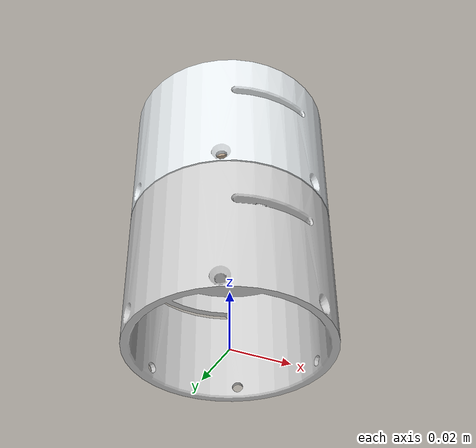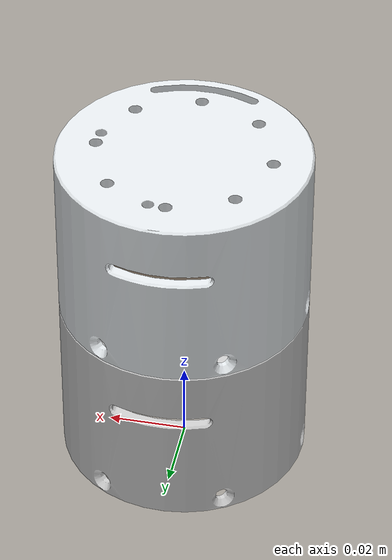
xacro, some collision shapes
<?xml version="1.0"?>
<robot xmlns:xacro="http://wiki.ros.org/xacro"
       name="sensor" >

  <xacro:arg name="prefix" default="ft_sensor0"/>

  <xacro:include filename="$(find rokubi_kinova_adapter)/urdf/BFT_ROKS_KINOVA.urdf.xacro" />

  <xacro:property name="prefix" value="$(arg prefix)" />

  <xacro:BFT_ROKS_KINOVA prefix="${prefix}" />

  <link name="world" />

  <joint name="world_joint" type="fixed">
    <parent link="world" />
    <child link = "$(arg prefix)_robot_side" />
    <origin xyz="0.0 0.0 0.0" rpy="0.0 0.0 0.0" />
  </joint>

</robot>

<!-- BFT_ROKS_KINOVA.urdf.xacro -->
<root xmlns:xi="http://www.w3.org/2001/XInclude"
    xmlns:gazebo="http://playerstage.sourceforge.net/gazebo/xmlschema/#gz"
    xmlns:model="http://playerstage.sourceforge.net/gazebo/xmlschema/#model"
    xmlns:sensor="http://playerstage.sourceforge.net/gazebo/xmlschema/#sensor"
    xmlns:body="http://playerstage.sourceforge.net/gazebo/xmlschema/#body"
    xmlns:geom="http://playerstage.sourceforge.net/gazebo/xmlschema/#geom"
    xmlns:joint="http://playerstage.sourceforge.net/gazebo/xmlschema/#joint"
    xmlns:controller="http://playerstage.sourceforge.net/gazebo/xmlschema/#controller"
    xmlns:interface="http://playerstage.sourceforge.net/gazebo/xmlschema/#interface"
    xmlns:rendering="http://playerstage.sourceforge.net/gazebo/xmlschema/#rendering"
    xmlns:renderable="http://playerstage.sourceforge.net/gazebo/xmlschema/#renderable"
    xmlns:physics="http://playerstage.sourceforge.net/gazebo/xmlschema/#physics"
    xmlns:xacro="http://www.ros.org/wiki/xacro">

  <xacro:include filename="$(find rokubi_kinova_adapter)/urdf/BFT_ROKS_SER_M8.urdf.xacro" />

  <xacro:macro name="BFT_ROKS_KINOVA" params="prefix">
    <link name="${prefix}_robot_side">
      <inertial>
        <origin
          xyz="-1.493E-05 0.00031132 0.030733"
          rpy="0 0 0" />
        <mass
          value="0.11363" />
        <inertia
          ixx="6.0031E-05"
          ixy="-4.9397E-10"
          ixz="2.1498E-08"
          iyy="6.1766E-05"
          iyz="-3.7872E-07"
          izz="7.9726E-05" />
      </inertial>
      <visual>
        <origin
          xyz="0 0 0"
          rpy="0 0 0" />
        <geometry>
          <mesh
            filename="package://rokubi_kinova_adapter/meshes/adapter/mounting.STL" />
        </geometry>
        <material
          name="">
          <color
            rgba="0.8 0.8 0.8 1" />
        </material>
      </visual>
      <collision>
        <origin
          xyz="0 0 0"
          rpy="0 0 0" />
        <geometry>
          <mesh
            filename="package://rokubi_kinova_adapter/meshes/adapter/mounting.STL" />
        </geometry>
      </collision>
    </link>
    <link name="${prefix}_adapter"/>
    <joint
      name="${prefix}_adapter_joint"
      type="fixed">
      <origin
        xyz="0 0 0.045"
        rpy="0 0 0" />
      <parent
        link="${prefix}_robot_side" />
      <child
        link="${prefix}_adapter" />
      <axis
        xyz="0 0 0" />
    </joint>

    <xacro:BFT_ROKS_SER_M8 prefix="${prefix}" />

    <joint name="${prefix}_sensor_joint" type="fixed">
      <parent link="${prefix}_adapter" />
      <child link = "${prefix}_mounting" />
      <origin xyz="0.0 0.0 0.0" rpy="0.0 0.0 0.0" />
    </joint>

    <joint name="${prefix}_gripper_adapter_joint" type="fixed">
      <parent link="${prefix}_wrench" />
      <child link = "${prefix}_gripper_adapter" />
      <origin xyz="0.0 0.0 0.0" rpy="0.0 0.0 0.0" />
    </joint>

    <link name="${prefix}_gripper_adapter">
      <inertial>
        <origin
          xyz="4.4172E-05 0.00059454 0.00333"
          rpy="0 0 0" />
        <mass
          value="0.050072" />
        <inertia
          ixx="1.0012E-05"
          ixy="1.3176E-09"
          ixz="-4.0839E-09"
          iyy="1.0674E-05"
          iyz="-5.0596E-09"
          izz="2.0223E-05" />
      </inertial>
      <visual>
        <origin
          xyz="0 0 0"
          rpy="0 0 0" />
        <geometry>
          <mesh
            filename="package://rokubi_kinova_adapter/meshes/adapter/gripper_adapter.STL" />
        </geometry>
        <material
          name="">
          <color
            rgba="0.8 0.8 0.8 1" />
        </material>
      </visual>
      <collision>
        <origin
          xyz="0 0 0"
          rpy="0 0 0" />
        <geometry>
          <mesh
            filename="package://rokubi_kinova_adapter/meshes/adapter/gripper_adapter.STL" />
        </geometry>
      </collision>
    </link>
    <link name="${prefix}_gripper"/>
    <joint
      name="${prefix}_gripper_joint"
      type="fixed">
      <origin
        xyz="0 0 0.007"
        rpy="0 0 0" />
      <parent
        link="${prefix}_gripper_adapter" />
      <child
        link="${prefix}_gripper" />
      <axis
        xyz="0 0 0" />
    </joint>

  </xacro:macro>
</root>

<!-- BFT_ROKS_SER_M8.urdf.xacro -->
<root xmlns:xi="http://www.w3.org/2001/XInclude"
    xmlns:gazebo="http://playerstage.sourceforge.net/gazebo/xmlschema/#gz"
    xmlns:model="http://playerstage.sourceforge.net/gazebo/xmlschema/#model"
    xmlns:sensor="http://playerstage.sourceforge.net/gazebo/xmlschema/#sensor"
    xmlns:body="http://playerstage.sourceforge.net/gazebo/xmlschema/#body"
    xmlns:geom="http://playerstage.sourceforge.net/gazebo/xmlschema/#geom"
    xmlns:joint="http://playerstage.sourceforge.net/gazebo/xmlschema/#joint"
    xmlns:controller="http://playerstage.sourceforge.net/gazebo/xmlschema/#controller"
    xmlns:interface="http://playerstage.sourceforge.net/gazebo/xmlschema/#interface"
    xmlns:rendering="http://playerstage.sourceforge.net/gazebo/xmlschema/#rendering"
    xmlns:renderable="http://playerstage.sourceforge.net/gazebo/xmlschema/#renderable"
    xmlns:physics="http://playerstage.sourceforge.net/gazebo/xmlschema/#physics"
    xmlns:xacro="http://www.ros.org/wiki/xacro">

  <xacro:macro name="BFT_ROKS_SER_M8" params="prefix">
    <link
      name="${prefix}_mounting">
      <inertial>
        <origin
          xyz="-2.2475E-05 0.00127 0.014438"
          rpy="0 0 0" />
        <mass
          value="0.068987" />
        <inertia
          ixx="1.7966E-05"
          ixy="-2.0386E-08"
          ixz="7.7509E-09"
          iyy="1.7744E-05"
          iyz="-1.1863E-08"
          izz="2.7696E-05" />
      </inertial>
      <visual>
        <origin
          xyz="0 0 0"
          rpy="0 0 0" />
        <geometry>
          <mesh
            filename="package://rokubi_kinova_adapter/meshes/sensor/BFT_ROKS_SER_M8/mounting.STL" />
        </geometry>
        <material
          name="Bota_material">
          <color
            rgba="0.89804 0.91765 0.92941 1" />
        </material>
      </visual>
      <collision>
        <origin
          xyz="0 0 0.0155"
          rpy="0 0 0" />
        <geometry>
          <cylinder radius="0.024" length="0.031"/>
        </geometry>
      </collision>
      <collision>
        <origin
          xyz="0 0.028 0.0135"
          rpy="0 0 0" />
        <geometry>
          <box size="0.018 0.015 0.027" />
        </geometry>
      </collision>
      <collision>
        <origin
          xyz="0 0.0515 0.0135"
          rpy="1.57 0 0" />
        <geometry>
          <cylinder radius="0.0065" length="0.032"/>
        </geometry>
      </collision>
    </link>
    <link
      name="${prefix}_wrench">
      <inertial>
        <origin
          xyz="-1.6253E-08 6.5136E-06 -0.0075009"
          rpy="0 0 0" />
        <mass
          value="0.028727" />
        <inertia
          ixx="3.2695E-06"
          ixy="9.1326E-13"
          ixz="-1.2355E-12"
          iyy="3.2665E-06"
          iyz="-3.9713E-10"
          izz="5.081E-06" />
      </inertial>
      <visual>
        <origin
          xyz="0 0 0"
          rpy="0 0 0" />
        <geometry>
          <mesh
            filename="package://rokubi_kinova_adapter/meshes/sensor/BFT_ROKS_SER_M8/wrench.STL" />
        </geometry>
        <material
          name="Bota_material">
          <color
            rgba="0.6902 0.61176 0.52941 1" />
        </material>
      </visual>
      <collision>
        <origin
          xyz="0 0 -0.009"
          rpy="0 0 0" />
        <geometry>
          <cylinder radius="0.019" length="0.018"/>
        </geometry>
      </collision>
    </link>
    <joint
      name="${prefix}_mounting_to_wrench"
      type="fixed">
      <origin
        xyz="0 0 0.032"
        rpy="0 0 0" />
      <parent
        link="${prefix}_mounting" />
      <child
        link="${prefix}_wrench" />
      <axis
        xyz="0 0 0" />
    </joint>
  </xacro:macro>
</root>
